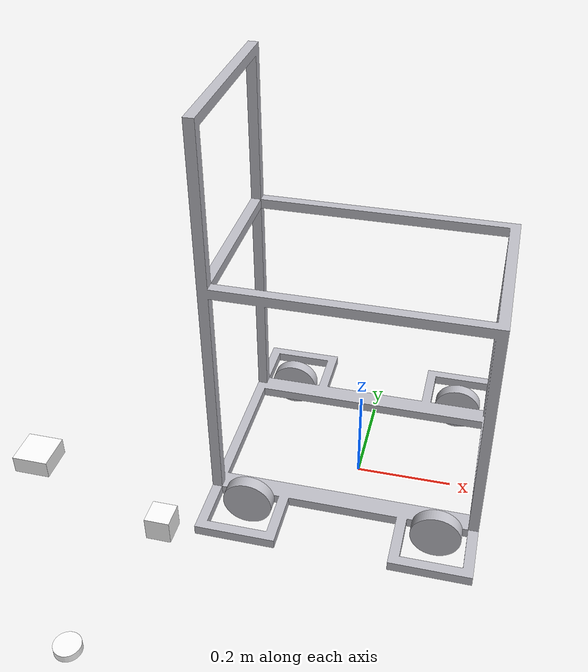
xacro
<?xml version="1.0" ?>
<robot name="urdf_base" xmlns:xacro="http://www.ros.org/wiki/xacro">

<xacro:include filename="$(find server_bot)/urdf/materials.xacro" />
<xacro:include filename="$(find server_bot)/urdf/urdf_base.trans" />
<xacro:include filename="$(find server_bot)/urdf/urdf_base.gazebo" />
<link name="base_footprint"/>

<joint name="footprint_link_joint" type="fixed">
  <origin xyz="0 0 0" rpy="0 0 0"/>
  <parent link="base_footprint"/>
  <child link="base_link"/>
  <axis xyz="0 0 0"/>
</joint>

<link name="base_link">
  <inertial>
    <origin xyz="-0.017964706437151683 7.958078640513123e-15 0.19692457662763105" rpy="0 0 0"/>
    <mass value="19.185824620104434"/>
    <inertia ixx="1.663084" iyy="1.844906" izz="1.439572" ixy="-0.0" iyz="0.0" ixz="0.192956"/>
  </inertial>
  <visual>
    <origin xyz="0 0 0" rpy="0 0 0"/>
    <geometry>
      <mesh filename="package://server_bot/meshes/base_link.stl" scale="0.001 0.001 0.001"/>
    </geometry>
    <material name="silver"/>
  </visual>
  <collision>
    <origin xyz="0 0 0" rpy="0 0 0"/>
    <geometry>
      <mesh filename="package://server_bot/meshes/base_link.stl" scale="0.001 0.001 0.001"/>
    </geometry>
  </collision>
</link>

<link name="wheel_1_1">
  <inertial>
    <origin xyz="0.013000187336528163 3.3163871071550943e-07 4.379836845702645e-07" rpy="0 0 0"/>
    <mass value="1.6029976514941926"/>
    <inertia ixx="0.002004" iyy="0.001092" izz="0.001092" ixy="0.0" iyz="-0.0" ixz="0.0"/>
  </inertial>
  <visual>
    <origin xyz="0.18941 0.509146 -0.056794" rpy="0 0 0"/>
    <geometry>
      <mesh filename="package://server_bot/meshes/wheel_1_1.stl" scale="0.001 0.001 0.001"/>
    </geometry>
    <material name="silver"/>
  </visual>
  <collision>
    <origin xyz="0.18941 0.509146 -0.056794" rpy="0 0 0"/>
    <geometry>
      <mesh filename="package://server_bot/meshes/wheel_1_1.stl" scale="0.001 0.001 0.001"/>
    </geometry>
  </collision>
</link>

<link name="wheel_2_1">
  <inertial>
    <origin xyz="0.013000187336532881 3.3163871146491e-07 4.379836929663261e-07" rpy="0 0 0"/>
    <mass value="1.6029976514941917"/>
    <inertia ixx="0.002004" iyy="0.001092" izz="0.001092" ixy="-0.0" iyz="-0.0" ixz="-0.0"/>
  </inertial>
  <visual>
    <origin xyz="0.18941 0.129146 -0.056794" rpy="0 0 0"/>
    <geometry>
      <mesh filename="package://server_bot/meshes/wheel_2_1.stl" scale="0.001 0.001 0.001"/>
    </geometry>
    <material name="silver"/>
  </visual>
  <collision>
    <origin xyz="0.18941 0.129146 -0.056794" rpy="0 0 0"/>
    <geometry>
      <mesh filename="package://server_bot/meshes/wheel_2_1.stl" scale="0.001 0.001 0.001"/>
    </geometry>
  </collision>
</link>

<link name="wheel_4_1">
  <inertial>
    <origin xyz="-0.012999812663476495 3.316387161000911e-07 4.379836937781767e-07" rpy="0 0 0"/>
    <mass value="1.6029976514941915"/>
    <inertia ixx="0.002004" iyy="0.001092" izz="0.001092" ixy="0.0" iyz="-0.0" ixz="0.0"/>
  </inertial>
  <visual>
    <origin xyz="0.54941 0.129146 -0.056794" rpy="0 0 0"/>
    <geometry>
      <mesh filename="package://server_bot/meshes/wheel_4_1.stl" scale="0.001 0.001 0.001"/>
    </geometry>
    <material name="silver"/>
  </visual>
  <collision>
    <origin xyz="0.54941 0.129146 -0.056794" rpy="0 0 0"/>
    <geometry>
      <mesh filename="package://server_bot/meshes/wheel_4_1.stl" scale="0.001 0.001 0.001"/>
    </geometry>
  </collision>
</link>

<link name="wheel_3_1">
  <inertial>
    <origin xyz="-0.012999812663473054 3.316387148233346e-07 4.379836854931374e-07" rpy="0 0 0"/>
    <mass value="1.6029976514941926"/>
    <inertia ixx="0.002004" iyy="0.001092" izz="0.001092" ixy="0.0" iyz="0.0" ixz="0.0"/>
  </inertial>
  <visual>
    <origin xyz="0.54941 0.509146 -0.056794" rpy="0 0 0"/>
    <geometry>
      <mesh filename="package://server_bot/meshes/wheel_3_1.stl" scale="0.001 0.001 0.001"/>
    </geometry>
    <material name="silver"/>
  </visual>
  <collision>
    <origin xyz="0.54941 0.509146 -0.056794" rpy="0 0 0"/>
    <geometry>
      <mesh filename="package://server_bot/meshes/wheel_3_1.stl" scale="0.001 0.001 0.001"/>
    </geometry>
  </collision>
</link>

<link name="camera">
    <inertial>
            <mass value="0.1" />
            <inertia ixx="0.01" ixy="0.0" ixz="0"
            iyy="0.01" iyz="0" izz="0.01" />
    </inertial>

    <visual>
      <geometry>
        <box size="0.05 0.05 0.025"/>
      </geometry>
      <material name="white">
        <color rgba="1 1 1 1"/>
      </material>
    </visual>

    <collision>
      <geometry>
          <box size="0.05 0.05 0.025"/>
      </geometry>
    </collision>
</link>

<link name="lidar">
    <inertial>
            <mass value="0.5" />
            <inertia ixx="0.01" ixy="0.0" ixz="0"
            iyy="0.01" iyz="0" izz="0.01" />
    </inertial>

    <visual>
      <geometry>
        <cylinder radius="0.025" length="0.015"/>
      </geometry>
      <material name="white">
        <color rgba="1 1 1 1"/>
      </material>
    </visual>

    <collision>
      <geometry>
          <box size="0.1 0.1 0.1"/>
      </geometry>
    </collision>
</link>

<link name="imu_link">
    <inertial>
      <mass value="0.3"/>
      <inertia ixx="0.01" ixy="0.0" ixz="0"
          iyy="0.01" iyz="0" izz="0.01" />
    </inertial>
    <visual>
      <geometry>
        <box size="0.05 0.05 0.05"/>
      </geometry>
      <material name="white">
        <color rgba="1 1 1 1"/>
      </material>
    </visual>
    <collision>
      <geometry>
          <box size="0.01 0.01 0.005"/>
      </geometry>
    </collision>

</link>

<joint name="Revolute 13" type="continuous">
  <origin xyz="-0.18941 -0.509146 0.056794" rpy="0 0 0"/>
  <parent link="base_link"/>
  <child link="wheel_1_1"/>
  <axis xyz="1.0 -0.0 0.0"/>
</joint>

<joint name="Revolute 14" type="continuous">
  <origin xyz="-0.18941 -0.129146 0.056794" rpy="0 0 0"/>
  <parent link="base_link"/>
  <child link="wheel_2_1"/>
  <axis xyz="1.0 -0.0 0.0"/>
</joint>

<joint name="Revolute 15" type="continuous">
  <origin xyz="-0.54941 -0.129146 0.056794" rpy="0 0 0"/>
  <parent link="base_link"/>
  <child link="wheel_4_1"/>
  <axis xyz="1.0 0.0 -0.0"/>
</joint>

<joint name="Revolute 16" type="continuous">
  <origin xyz="-0.54941 -0.509146 0.056794" rpy="0 0 0"/>
  <parent link="base_link"/>
  <child link="wheel_3_1"/>
  <axis xyz="1.0 0.0 -0.0"/>
</joint>

<joint name="camera_joint" type="fixed">
    <origin xyz="-0.35 -0.616 0.54" rpy="0 0.0 4.71"/>
    <parent link="base_link"/>
    <child link="camera"/>
    <axis xyz="0.0 0.0 1.0"/>
</joint>

<joint name="lidar_joint" type="fixed">
  <origin xyz="-0.385 -0.61 0.080" rpy="0 0.0 3.14"/>
  <parent link="base_link"/>
  <child link="lidar"/>
  <axis xyz="0.0 0.0 1.0"/>
</joint>

<joint name="imu_joint" type="fixed">
  <origin xyz="-0.33 -0.31 0.08"/>
  <parent link="base_link"/>
  <child link="imu_link"/>
  <axis xyz="0.0 0.0 1.0"/>
</joint>

<gazebo reference="lidar">
    <material>Gazebo/Blue</material>
</gazebo>

<gazebo reference="camera">
    <material>Gazebo/Red</material>
</gazebo>

<gazebo reference="camera">
  <sensor type="camera" name="camera1">
    <visualize>true</visualize>
    <update_rate>30.0</update_rate>
    <camera name="head">
      <horizontal_fov>1.3962634</horizontal_fov>
      <image>
        <width>800</width>
        <height>800</height>
        <format>R8G8B8</format>
      </image>
      <clip>
        <near>0.02</near>
        <far>300</far>
      </clip>
    </camera>
    <plugin name="camera_controller" filename="libgazebo_ros_camera.so">
      <alwaysOn>true</alwaysOn>
      <updateRate>60.0</updateRate>
      <cameraName>/camera1</cameraName>
      <imageTopicName>image_raw</imageTopicName>
      <cameraInfoTopicName>info_camera</cameraInfoTopicName>
      <frameName>camera</frameName>1.57
      <hackBaseline>0.07</hackBaseline>
    </plugin>
  </sensor>
</gazebo>

<gazebo reference="lidar">
  <sensor type="ray" name="head_hokuyo_sensor">
    <pose>0 0 0 0 0 0</pose>
    <visualize>true</visualize>
    <update_rate>20</update_rate>
    <topic_name>lidar_topic</topic_name>
    <output_type>sensor_msgs/LaserScan</output_type>
    <ray>
      <scan>
        <horizontal>
          <samples>720</samples>
          <resolution>1</resolution>
          <min_angle>0</min_angle>
          <max_angle>6.28</max_angle>
        </horizontal>
      </scan>
      <range>
        <min>0.6</min>
        <max>3.5</max>
        <resolution>0.01</resolution>
      </range>
      <noise>
        <type>gaussian</type>
        <mean>0.0</mean>
        <stddev>0.01</stddev>
      </noise>
    </ray>
    <plugin name="gazebo_ros_head_hokuyo_controller" filename="libgazebo_ros_laser.so">
      <topicName>lidar_topic</topicName>
      <frameName>lidar</frameName>
    </plugin>
  </sensor>
</gazebo>

<gazebo>
  <plugin name="skid_steer_drive_controller" filename="libgazebo_ros_skid_steer_drive.so">
    <updateRate>15.0</updateRate>
    <robotNamespace>/</robotNamespace>
    <leftFrontJoint>Revolute 16</leftFrontJoint>
    <rightFrontJoint>Revolute 13</rightFrontJoint>
    <leftRearJoint>Revolute 15</leftRearJoint>
    <rightRearJoint>Revolute 14</rightRearJoint>
    <wheelSeparation>0.4</wheelSeparation>
    <wheelDiameter>0.215</wheelDiameter>
    <odometryFrame>odom</odometryFrame>
    <robotBaseFrame>base_link</robotBaseFrame>
    <publishOdom>true</publishOdom>
    <publishOdomTF>true</publishOdomTF>
    <publishWheelTF>true</publishWheelTF>
    <torque>20</torque>
    <topicName>cmd_vel</topicName>
    <publishTF>false</publishTF>
    <odometrySource>wheels</odometrySource>
  </plugin>
</gazebo>

<gazebo reference="imu_link">
  <gravity>true</gravity>
  <sensor name="imu_sensor" type="imu">
  <imu>
      <angular_velocity>
        <x>
          <noise type="gaussian">
            <mean>0.0</mean>
            <stddev>2e-4</stddev>
            <bias_mean>0.0000075</bias_mean>
            <bias_stddev>0.0000008</bias_stddev>
          </noise>
        </x>
        <y>
          <noise type="gaussian">
            <mean>0.0</mean>
            <stddev>2e-4</stddev>
            <bias_mean>0.0000075</bias_mean>
            <bias_stddev>0.0000008</bias_stddev>
          </noise>
        </y>
        <z>
          <noise type="gaussian">
            <mean>0.0</mean>
            <stddev>2e-4</stddev>
            <bias_mean>0.0000075</bias_mean>
            <bias_stddev>0.0000008</bias_stddev>
          </noise>
        </z>
      </angular_velocity>
      <linear_acceleration>
        <x>
          <noise type="gaussian">
            <mean>0.0</mean>
            <stddev>1.7e-2</stddev>
            <bias_mean>0.1</bias_mean>
            <bias_stddev>0.001</bias_stddev>
          </noise>
        </x>
        <y>
          <noise type="gaussian">
            <mean>0.0</mean>
            <stddev>1.7e-2</stddev>
            <bias_mean>0.1</bias_mean>
            <bias_stddev>0.001</bias_stddev>
          </noise>
        </y>
        <z>
          <noise type="gaussian">
            <mean>0.0</mean>
            <stddev>1.7e-2</stddev>
            <bias_mean>0.1</bias_mean>
            <bias_stddev>0.001</bias_stddev>
          </noise>
        </z>
      </linear_acceleration>
    </imu>
<always_on>true</always_on>
    <update_rate>100</update_rate>
    <visualize>true</visualize>
    <topic>imu</topic>
    <plugin filename="libgazebo_ros_imu_sensor.so" name="imu_plugin">
      <topicName>imu</topicName>
      <bodyName>imu_link</bodyName>
      <updateRateHZ>20</updateRateHZ>
      <gaussianNoise>0.0</gaussianNoise>
      <xyzOffset>0 0 0</xyzOffset>
      <rpyOffset>0 0 0</rpyOffset>
      <frameName>imu_link</frameName>
      <initial_orientation_as_reference>true</initial_orientation_as_reference>
    </plugin>
    <pose>0 0 0 0 0 0</pose>
  </sensor>
</gazebo>
</robot>

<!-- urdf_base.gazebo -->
<robot name="urdf_base" xmlns:xacro="http://www.ros.org/wiki/xacro" >

<xacro:property name="body_color" value="Gazebo/Silver" />

<gazebo>
  <plugin name="control" filename="libgazebo_ros_control.so"/>
</gazebo>
<gazebo reference="base_link">
  <material>${body_color}</material>
  <mu1>0.2</mu1>
  <mu2>0.2</mu2>
  <selfCollide>true</selfCollide>
  <gravity>true</gravity>
</gazebo>

<gazebo reference="wheel_4_1">
  <material>${body_color}</material>
  <mu1>0.2</mu1>
  <mu2>0.2</mu2>
  <selfCollide>true</selfCollide>
</gazebo>

<gazebo reference="wheel_3_1">
  <material>${body_color}</material>
  <mu1>0.2</mu1>
  <mu2>0.2</mu2>
  <selfCollide>true</selfCollide>
</gazebo>

<gazebo reference="wheel_1_1">
  <material>${body_color}</material>
  <mu1>0.2</mu1>
  <mu2>0.2</mu2>
  <selfCollide>true</selfCollide>
</gazebo>

<gazebo reference="wheel_2_1">
  <material>${body_color}</material>
  <mu1>0.2</mu1>
  <mu2>0.2</mu2>
  <selfCollide>true</selfCollide>
</gazebo>

</robot>
